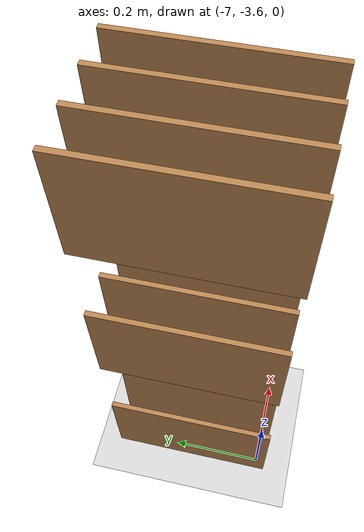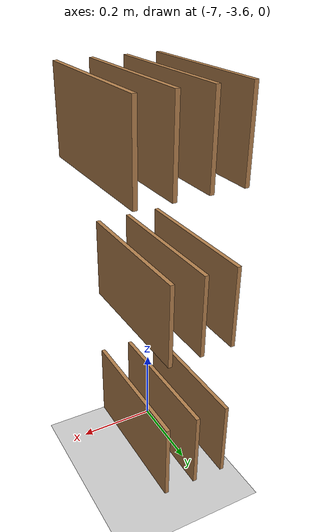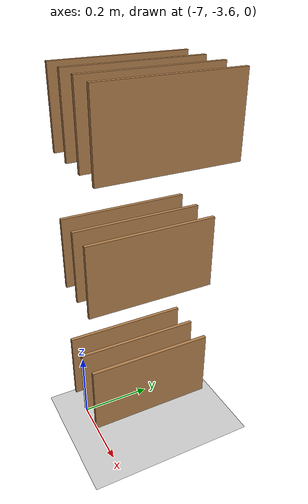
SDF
<sdf version="1.7">
 <world name="default">
  <model name="ground_plane">
   <static>1</static>
   <link name="link">
    <collision name="collision">
     <geometry><plane><normal>0 0 1</normal><size>100 100</size></plane></geometry>
     <surface><friction><ode><mu>1</mu><mu2>1</mu2></ode></friction></surface>
    </collision>
    <visual name="visual">
     <cast_shadows>0</cast_shadows>
     <geometry><plane><normal>0 0 1</normal><size>100 100</size></plane></geometry>
     <material>
      <script><uri>file://media/materials/scripts/gazebo.material</uri><name>Gazebo/Grey</name></script>
     </material>
    </visual>
    <velocity_decay><linear>0</linear><angular>0</angular></velocity_decay>
   </link>
  </model>
  <model name="bookshelf_0">
   <link name="link_1">
    <inertial>
     <mass>1</mass>
     <inertia>
      <ixx>0.166667</ixx>
      <ixy>0</ixy>
      <ixz>0</ixz>
      <iyy>0.166667</iyy>
      <iyz>0</iyz>
      <izz>0.166667</izz>
     </inertia>
    </inertial>
    <pose>-0.38 -0.195 0.907998 0 0 -1.57</pose>
    <visual name="visual">
     <geometry><box><size>0.35 0.01 0.2</size></box></geometry>
     <material>
      <script><uri>file://media/materials/scripts/gazebo.material</uri><name>Gazebo/Wood</name></script>
      <shader type="pixel"/>
     </material>
    </visual>
    <visual name="ModelPreview_3::link_1::visual_1">
     <geometry><box><size>0.35 0.01 0.2</size></box></geometry>
     <material>
      <lighting>1</lighting>
      <script><uri>file://media/materials/scripts/gazebo.material</uri><name>Gazebo/Grey</name></script>
      <shader type="pixel"><normal_map>__default__</normal_map></shader>
      <ambient>0.3 0.3 0.3 1</ambient>
      <diffuse>0.7 0.7 0.7 1</diffuse>
      <specular>0.01 0.01 0.01 1</specular>
      <emissive>0 0 0 1</emissive>
     </material>
    </visual>
    <collision name="collision">
     <geometry><box><size>0.35 0.01 0.2</size></box></geometry>
     <surface>
      <friction>
       <ode><mu>1</mu><mu2>1</mu2><fdir1>0 0 0</fdir1><slip1>0</slip1><slip2>0</slip2></ode>
       <torsional>
        <coefficient>1</coefficient>
        <patch_radius>0</patch_radius>
        <surface_radius>0</surface_radius>
        <use_patch_radius>1</use_patch_radius>
        <ode><slip>0</slip></ode>
       </torsional>
      </friction>
      <bounce><restitution_coefficient>0</restitution_coefficient><threshold>1e+06</threshold></bounce>
      <contact>
       <collide_without_contact>0</collide_without_contact>
       <collide_without_contact_bitmask>1</collide_without_contact_bitmask>
       <collide_bitmask>1</collide_bitmask>
       <ode>
        <soft_cfm>0</soft_cfm>
        <soft_erp>0.2</soft_erp>
        <kp>1e+13</kp>
        <kd>1</kd>
        <max_vel>0.01</max_vel>
        <min_depth>0</min_depth>
       </ode>
       <bullet>
        <split_impulse>1</split_impulse>
        <split_impulse_penetration_threshold>-0.01</split_impulse_penetration_threshold>
        <soft_cfm>0</soft_cfm>
        <soft_erp>0.2</soft_erp>
        <kp>1e+13</kp>
        <kd>1</kd>
       </bullet>
      </contact>
     </surface>
    </collision>
   </link>
   <link name="link_2">
    <inertial>
     <mass>1</mass>
     <inertia>
      <ixx>0.166667</ixx>
      <ixy>0</ixy>
      <ixz>0</ixz>
      <iyy>0.166667</iyy>
      <iyz>0</iyz>
      <izz>0.166667</izz>
     </inertia>
    </inertial>
    <pose>-0.3 -0.195 0.907998 0 0 -1.57</pose>
    <visual name="visual">
     <geometry><box><size>0.35 0.01 0.2</size></box></geometry>
     <material>
      <script><uri>file://media/materials/scripts/gazebo.material</uri><name>Gazebo/Wood</name></script>
      <shader type="pixel"/>
     </material>
    </visual>
    <visual name="ModelPreview_3::link_1::visual_1">
     <geometry><box><size>0.35 0.01 0.2</size></box></geometry>
     <material>
      <lighting>1</lighting>
      <script><uri>file://media/materials/scripts/gazebo.material</uri><name>Gazebo/Grey</name></script>
      <shader type="pixel"><normal_map>__default__</normal_map></shader>
      <ambient>0.3 0.3 0.3 1</ambient>
      <diffuse>0.7 0.7 0.7 1</diffuse>
      <specular>0.01 0.01 0.01 1</specular>
      <emissive>0 0 0 1</emissive>
     </material>
    </visual>
    <collision name="collision">
     <geometry><box><size>0.35 0.01 0.2</size></box></geometry>
     <surface>
      <friction>
       <ode><mu>1</mu><mu2>1</mu2><fdir1>0 0 0</fdir1><slip1>0</slip1><slip2>0</slip2></ode>
       <torsional>
        <coefficient>1</coefficient>
        <patch_radius>0</patch_radius>
        <surface_radius>0</surface_radius>
        <use_patch_radius>1</use_patch_radius>
        <ode><slip>0</slip></ode>
       </torsional>
      </friction>
      <bounce><restitution_coefficient>0</restitution_coefficient><threshold>1e+06</threshold></bounce>
      <contact>
       <collide_without_contact>0</collide_without_contact>
       <collide_without_contact_bitmask>1</collide_without_contact_bitmask>
       <collide_bitmask>1</collide_bitmask>
       <ode>
        <soft_cfm>0</soft_cfm>
        <soft_erp>0.2</soft_erp>
        <kp>1e+13</kp>
        <kd>1</kd>
        <max_vel>0.01</max_vel>
        <min_depth>0</min_depth>
       </ode>
       <bullet>
        <split_impulse>1</split_impulse>
        <split_impulse_penetration_threshold>-0.01</split_impulse_penetration_threshold>
        <soft_cfm>0</soft_cfm>
        <soft_erp>0.2</soft_erp>
        <kp>1e+13</kp>
        <kd>1</kd>
       </bullet>
      </contact>
     </surface>
    </collision>
   </link>
   <link name="link_3">
    <inertial>
     <mass>1</mass>
     <inertia>
      <ixx>0.166667</ixx>
      <ixy>0</ixy>
      <ixz>0</ixz>
      <iyy>0.166667</iyy>
      <iyz>0</iyz>
      <izz>0.166667</izz>
     </inertia>
    </inertial>
    <pose>-0.22 -0.195 0.907998 0 0 -1.57</pose>
    <visual name="visual">
     <geometry><box><size>0.35 0.01 0.2</size></box></geometry>
     <material>
      <script><uri>file://media/materials/scripts/gazebo.material</uri><name>Gazebo/Wood</name></script>
      <shader type="pixel"/>
     </material>
    </visual>
    <visual name="ModelPreview_3::link_1::visual_1">
     <geometry><box><size>0.35 0.01 0.2</size></box></geometry>
     <material>
      <lighting>1</lighting>
      <script><uri>file://media/materials/scripts/gazebo.material</uri><name>Gazebo/Grey</name></script>
      <shader type="pixel"><normal_map>__default__</normal_map></shader>
      <ambient>0.3 0.3 0.3 1</ambient>
      <diffuse>0.7 0.7 0.7 1</diffuse>
      <specular>0.01 0.01 0.01 1</specular>
      <emissive>0 0 0 1</emissive>
     </material>
    </visual>
    <collision name="collision">
     <geometry><box><size>0.35 0.01 0.2</size></box></geometry>
     <surface>
      <friction>
       <ode><mu>1</mu><mu2>1</mu2><fdir1>0 0 0</fdir1><slip1>0</slip1><slip2>0</slip2></ode>
       <torsional>
        <coefficient>1</coefficient>
        <patch_radius>0</patch_radius>
        <surface_radius>0</surface_radius>
        <use_patch_radius>1</use_patch_radius>
        <ode><slip>0</slip></ode>
       </torsional>
      </friction>
      <bounce><restitution_coefficient>0</restitution_coefficient><threshold>1e+06</threshold></bounce>
      <contact>
       <collide_without_contact>0</collide_without_contact>
       <collide_without_contact_bitmask>1</collide_without_contact_bitmask>
       <collide_bitmask>1</collide_bitmask>
       <ode>
        <soft_cfm>0</soft_cfm>
        <soft_erp>0.2</soft_erp>
        <kp>1e+13</kp>
        <kd>1</kd>
        <max_vel>0.01</max_vel>
        <min_depth>0</min_depth>
       </ode>
       <bullet>
        <split_impulse>1</split_impulse>
        <split_impulse_penetration_threshold>-0.01</split_impulse_penetration_threshold>
        <soft_cfm>0</soft_cfm>
        <soft_erp>0.2</soft_erp>
        <kp>1e+13</kp>
        <kd>1</kd>
       </bullet>
      </contact>
     </surface>
    </collision>
   </link>
   <link name="link_4">
    <inertial>
     <mass>1</mass>
     <inertia>
      <ixx>0.166667</ixx>
      <ixy>0</ixy>
      <ixz>0</ixz>
      <iyy>0.166667</iyy>
      <iyz>0</iyz>
      <izz>0.166667</izz>
     </inertia>
    </inertial>
    <pose>-0.14 -0.195 0.907998 0 0 -1.57</pose>
    <visual name="visual">
     <geometry><box><size>0.35 0.01 0.2</size></box></geometry>
     <material>
      <script><uri>file://media/materials/scripts/gazebo.material</uri><name>Gazebo/Wood</name></script>
      <shader type="pixel"/>
     </material>
    </visual>
    <visual name="ModelPreview_3::link_1::visual_1">
     <geometry><box><size>0.35 0.01 0.2</size></box></geometry>
     <material>
      <lighting>1</lighting>
      <script><uri>file://media/materials/scripts/gazebo.material</uri><name>Gazebo/Grey</name></script>
      <shader type="pixel"><normal_map>__default__</normal_map></shader>
      <ambient>0.3 0.3 0.3 1</ambient>
      <diffuse>0.7 0.7 0.7 1</diffuse>
      <specular>0.01 0.01 0.01 1</specular>
      <emissive>0 0 0 1</emissive>
     </material>
    </visual>
    <collision name="collision">
     <geometry><box><size>0.35 0.01 0.2</size></box></geometry>
     <surface>
      <friction>
       <ode><mu>1</mu><mu2>1</mu2><fdir1>0 0 0</fdir1><slip1>0</slip1><slip2>0</slip2></ode>
       <torsional>
        <coefficient>1</coefficient>
        <patch_radius>0</patch_radius>
        <surface_radius>0</surface_radius>
        <use_patch_radius>1</use_patch_radius>
        <ode><slip>0</slip></ode>
       </torsional>
      </friction>
      <bounce><restitution_coefficient>0</restitution_coefficient><threshold>1e+06</threshold></bounce>
      <contact>
       <collide_without_contact>0</collide_without_contact>
       <collide_without_contact_bitmask>1</collide_without_contact_bitmask>
       <collide_bitmask>1</collide_bitmask>
       <ode>
        <soft_cfm>0</soft_cfm>
        <soft_erp>0.2</soft_erp>
        <kp>1e+13</kp>
        <kd>1</kd>
        <max_vel>0.01</max_vel>
        <min_depth>0</min_depth>
       </ode>
       <bullet>
        <split_impulse>1</split_impulse>
        <split_impulse_penetration_threshold>-0.01</split_impulse_penetration_threshold>
        <soft_cfm>0</soft_cfm>
        <soft_erp>0.2</soft_erp>
        <kp>1e+13</kp>
        <kd>1</kd>
       </bullet>
      </contact>
     </surface>
    </collision>
   </link>
   <link name="link_2_1">
    <inertial>
     <mass>1</mass>
     <inertia>
      <ixx>0.166667</ixx>
      <ixy>0</ixy>
      <ixz>0</ixz>
      <iyy>0.166667</iyy>
      <iyz>0</iyz>
      <izz>0.166667</izz>
     </inertia>
    </inertial>
    <pose>-0.38 -0.195 0.5379 0 0 -1.57</pose>
    <visual name="visual">
     <geometry><box><size>0.35 0.01 0.2</size></box></geometry>
     <material>
      <script><uri>file://media/materials/scripts/gazebo.material</uri><name>Gazebo/Wood</name></script>
      <shader type="pixel"/>
     </material>
    </visual>
    <visual name="ModelPreview_3::link_1::visual_1">
     <geometry><box><size>0.35 0.01 0.2</size></box></geometry>
     <material>
      <lighting>1</lighting>
      <script><uri>file://media/materials/scripts/gazebo.material</uri><name>Gazebo/Grey</name></script>
      <shader type="pixel"><normal_map>__default__</normal_map></shader>
      <ambient>0.3 0.3 0.3 1</ambient>
      <diffuse>0.7 0.7 0.7 1</diffuse>
      <specular>0.01 0.01 0.01 1</specular>
      <emissive>0 0 0 1</emissive>
     </material>
    </visual>
    <collision name="collision">
     <geometry><box><size>0.35 0.01 0.2</size></box></geometry>
     <surface>
      <friction>
       <ode><mu>1</mu><mu2>1</mu2><fdir1>0 0 0</fdir1><slip1>0</slip1><slip2>0</slip2></ode>
       <torsional>
        <coefficient>1</coefficient>
        <patch_radius>0</patch_radius>
        <surface_radius>0</surface_radius>
        <use_patch_radius>1</use_patch_radius>
        <ode><slip>0</slip></ode>
       </torsional>
      </friction>
      <bounce><restitution_coefficient>0</restitution_coefficient><threshold>1e+06</threshold></bounce>
      <contact>
       <collide_without_contact>0</collide_without_contact>
       <collide_without_contact_bitmask>1</collide_without_contact_bitmask>
       <collide_bitmask>1</collide_bitmask>
       <ode>
        <soft_cfm>0</soft_cfm>
        <soft_erp>0.2</soft_erp>
        <kp>1e+13</kp>
        <kd>1</kd>
        <max_vel>0.01</max_vel>
        <min_depth>0</min_depth>
       </ode>
       <bullet>
        <split_impulse>1</split_impulse>
        <split_impulse_penetration_threshold>-0.01</split_impulse_penetration_threshold>
        <soft_cfm>0</soft_cfm>
        <soft_erp>0.2</soft_erp>
        <kp>1e+13</kp>
        <kd>1</kd>
       </bullet>
      </contact>
     </surface>
    </collision>
   </link>
   <link name="link_2_2">
    <inertial>
     <mass>1</mass>
     <inertia>
      <ixx>0.166667</ixx>
      <ixy>0</ixy>
      <ixz>0</ixz>
      <iyy>0.166667</iyy>
      <iyz>0</iyz>
      <izz>0.166667</izz>
     </inertia>
    </inertial>
    <pose>-0.3 -0.195 0.5379 0 0 -1.57</pose>
    <visual name="visual">
     <geometry><box><size>0.35 0.01 0.2</size></box></geometry>
     <material>
      <script><uri>file://media/materials/scripts/gazebo.material</uri><name>Gazebo/Wood</name></script>
      <shader type="pixel"/>
     </material>
    </visual>
    <visual name="ModelPreview_3::link_1::visual_1">
     <geometry><box><size>0.35 0.01 0.2</size></box></geometry>
     <material>
      <lighting>1</lighting>
      <script><uri>file://media/materials/scripts/gazebo.material</uri><name>Gazebo/Grey</name></script>
      <shader type="pixel"><normal_map>__default__</normal_map></shader>
      <ambient>0.3 0.3 0.3 1</ambient>
      <diffuse>0.7 0.7 0.7 1</diffuse>
      <specular>0.01 0.01 0.01 1</specular>
      <emissive>0 0 0 1</emissive>
     </material>
    </visual>
    <collision name="collision">
     <geometry><box><size>0.35 0.01 0.2</size></box></geometry>
     <surface>
      <friction>
       <ode><mu>1</mu><mu2>1</mu2><fdir1>0 0 0</fdir1><slip1>0</slip1><slip2>0</slip2></ode>
       <torsional>
        <coefficient>1</coefficient>
        <patch_radius>0</patch_radius>
        <surface_radius>0</surface_radius>
        <use_patch_radius>1</use_patch_radius>
        <ode><slip>0</slip></ode>
       </torsional>
      </friction>
      <bounce><restitution_coefficient>0</restitution_coefficient><threshold>1e+06</threshold></bounce>
      <contact>
       <collide_without_contact>0</collide_without_contact>
       <collide_without_contact_bitmask>1</collide_without_contact_bitmask>
       <collide_bitmask>1</collide_bitmask>
       <ode>
        <soft_cfm>0</soft_cfm>
        <soft_erp>0.2</soft_erp>
        <kp>1e+13</kp>
        <kd>1</kd>
        <max_vel>0.01</max_vel>
        <min_depth>0</min_depth>
       </ode>
       <bullet>
        <split_impulse>1</split_impulse>
        <split_impulse_penetration_threshold>-0.01</split_impulse_penetration_threshold>
        <soft_cfm>0</soft_cfm>
        <soft_erp>0.2</soft_erp>
        <kp>1e+13</kp>
        <kd>1</kd>
       </bullet>
      </contact>
     </surface>
    </collision>
   </link>
   <link name="link_2_3">
    <inertial>
     <mass>1</mass>
     <inertia>
      <ixx>0.166667</ixx>
      <ixy>0</ixy>
      <ixz>0</ixz>
      <iyy>0.166667</iyy>
      <iyz>0</iyz>
      <izz>0.166667</izz>
     </inertia>
    </inertial>
    <pose>-0.22 -0.195 0.5379 0 0 -1.57</pose>
    <visual name="visual">
     <geometry><box><size>0.35 0.01 0.2</size></box></geometry>
     <material>
      <script><uri>file://media/materials/scripts/gazebo.material</uri><name>Gazebo/Wood</name></script>
      <shader type="pixel"/>
     </material>
    </visual>
    <visual name="ModelPreview_3::link_1::visual_1">
     <geometry><box><size>0.35 0.01 0.2</size></box></geometry>
     <material>
      <lighting>1</lighting>
      <script><uri>file://media/materials/scripts/gazebo.material</uri><name>Gazebo/Grey</name></script>
      <shader type="pixel"><normal_map>__default__</normal_map></shader>
      <ambient>0.3 0.3 0.3 1</ambient>
      <diffuse>0.7 0.7 0.7 1</diffuse>
      <specular>0.01 0.01 0.01 1</specular>
      <emissive>0 0 0 1</emissive>
     </material>
    </visual>
    <collision name="collision">
     <geometry><box><size>0.35 0.01 0.2</size></box></geometry>
     <surface>
      <friction>
       <ode><mu>1</mu><mu2>1</mu2><fdir1>0 0 0</fdir1><slip1>0</slip1><slip2>0</slip2></ode>
       <torsional>
        <coefficient>1</coefficient>
        <patch_radius>0</patch_radius>
        <surface_radius>0</surface_radius>
        <use_patch_radius>1</use_patch_radius>
        <ode><slip>0</slip></ode>
       </torsional>
      </friction>
      <bounce><restitution_coefficient>0</restitution_coefficient><threshold>1e+06</threshold></bounce>
      <contact>
       <collide_without_contact>0</collide_without_contact>
       <collide_without_contact_bitmask>1</collide_without_contact_bitmask>
       <collide_bitmask>1</collide_bitmask>
       <ode>
        <soft_cfm>0</soft_cfm>
        <soft_erp>0.2</soft_erp>
        <kp>1e+13</kp>
        <kd>1</kd>
        <max_vel>0.01</max_vel>
        <min_depth>0</min_depth>
       </ode>
       <bullet>
        <split_impulse>1</split_impulse>
        <split_impulse_penetration_threshold>-0.01</split_impulse_penetration_threshold>
        <soft_cfm>0</soft_cfm>
        <soft_erp>0.2</soft_erp>
        <kp>1e+13</kp>
        <kd>1</kd>
       </bullet>
      </contact>
     </surface>
    </collision>
   </link>
   <link name="link_3_1">
    <inertial>
     <mass>1</mass>
     <inertia>
      <ixx>0.166667</ixx>
      <ixy>0</ixy>
      <ixz>0</ixz>
      <iyy>0.166667</iyy>
      <iyz>0</iyz>
      <izz>0.166667</izz>
     </inertia>
    </inertial>
    <pose>-0.38 -0.195 0.158 0 0 -1.57</pose>
    <visual name="visual">
     <geometry><box><size>0.35 0.01 0.2</size></box></geometry>
     <material>
      <script><uri>file://media/materials/scripts/gazebo.material</uri><name>Gazebo/Wood</name></script>
      <shader type="pixel"/>
     </material>
    </visual>
    <visual name="ModelPreview_3::link_1::visual_1">
     <geometry><box><size>0.35 0.01 0.2</size></box></geometry>
     <material>
      <lighting>1</lighting>
      <script><uri>file://media/materials/scripts/gazebo.material</uri><name>Gazebo/Grey</name></script>
      <shader type="pixel"><normal_map>__default__</normal_map></shader>
      <ambient>0.3 0.3 0.3 1</ambient>
      <diffuse>0.7 0.7 0.7 1</diffuse>
      <specular>0.01 0.01 0.01 1</specular>
      <emissive>0 0 0 1</emissive>
     </material>
    </visual>
    <collision name="collision">
     <geometry><box><size>0.35 0.01 0.2</size></box></geometry>
     <surface>
      <friction>
       <ode><mu>1</mu><mu2>1</mu2><fdir1>0 0 0</fdir1><slip1>0</slip1><slip2>0</slip2></ode>
       <torsional>
        <coefficient>1</coefficient>
        <patch_radius>0</patch_radius>
        <surface_radius>0</surface_radius>
        <use_patch_radius>1</use_patch_radius>
        <ode><slip>0</slip></ode>
       </torsional>
      </friction>
      <bounce><restitution_coefficient>0</restitution_coefficient><threshold>1e+06</threshold></bounce>
      <contact>
       <collide_without_contact>0</collide_without_contact>
       <collide_without_contact_bitmask>1</collide_without_contact_bitmask>
       <collide_bitmask>1</collide_bitmask>
       <ode>
        <soft_cfm>0</soft_cfm>
        <soft_erp>0.2</soft_erp>
        <kp>1e+13</kp>
        <kd>1</kd>
        <max_vel>0.01</max_vel>
        <min_depth>0</min_depth>
       </ode>
       <bullet>
        <split_impulse>1</split_impulse>
        <split_impulse_penetration_threshold>-0.01</split_impulse_penetration_threshold>
        <soft_cfm>0</soft_cfm>
        <soft_erp>0.2</soft_erp>
        <kp>1e+13</kp>
        <kd>1</kd>
       </bullet>
      </contact>
     </surface>
    </collision>
   </link>
   <link name="link_3_2">
    <inertial>
     <mass>1</mass>
     <inertia>
      <ixx>0.166667</ixx>
      <ixy>0</ixy>
      <ixz>0</ixz>
      <iyy>0.166667</iyy>
      <iyz>0</iyz>
      <izz>0.166667</izz>
     </inertia>
    </inertial>
    <pose>-0.3 -0.195 0.158 0 0 -1.57</pose>
    <visual name="visual">
     <geometry><box><size>0.35 0.01 0.2</size></box></geometry>
     <material>
      <script><uri>file://media/materials/scripts/gazebo.material</uri><name>Gazebo/Wood</name></script>
      <shader type="pixel"/>
     </material>
    </visual>
    <visual name="ModelPreview_3::link_1::visual_1">
     <geometry><box><size>0.35 0.01 0.2</size></box></geometry>
     <material>
      <lighting>1</lighting>
      <script><uri>file://media/materials/scripts/gazebo.material</uri><name>Gazebo/Grey</name></script>
      <shader type="pixel"><normal_map>__default__</normal_map></shader>
      <ambient>0.3 0.3 0.3 1</ambient>
      <diffuse>0.7 0.7 0.7 1</diffuse>
      <specular>0.01 0.01 0.01 1</specular>
      <emissive>0 0 0 1</emissive>
     </material>
    </visual>
    <collision name="collision">
     <geometry><box><size>0.35 0.01 0.2</size></box></geometry>
     <surface>
      <friction>
       <ode><mu>1</mu><mu2>1</mu2><fdir1>0 0 0</fdir1><slip1>0</slip1><slip2>0</slip2></ode>
       <torsional>
        <coefficient>1</coefficient>
        <patch_radius>0</patch_radius>
        <surface_radius>0</surface_radius>
        <use_patch_radius>1</use_patch_radius>
        <ode><slip>0</slip></ode>
       </torsional>
      </friction>
      <bounce><restitution_coefficient>0</restitution_coefficient><threshold>1e+06</threshold></bounce>
      <contact>
       <collide_without_contact>0</collide_without_contact>
       <collide_without_contact_bitmask>1</collide_without_contact_bitmask>
       <collide_bitmask>1</collide_bitmask>
       <ode>
        <soft_cfm>0</soft_cfm>
        <soft_erp>0.2</soft_erp>
        <kp>1e+13</kp>
        <kd>1</kd>
        <max_vel>0.01</max_vel>
        <min_depth>0</min_depth>
       </ode>
       <bullet>
        <split_impulse>1</split_impulse>
        <split_impulse_penetration_threshold>-0.01</split_impulse_penetration_threshold>
        <soft_cfm>0</soft_cfm>
        <soft_erp>0.2</soft_erp>
        <kp>1e+13</kp>
        <kd>1</kd>
       </bullet>
      </contact>
     </surface>
    </collision>
   </link>
   <link name="link_3_3">
    <inertial>
     <mass>1</mass>
     <inertia>
      <ixx>0.166667</ixx>
      <ixy>0</ixy>
      <ixz>0</ixz>
      <iyy>0.166667</iyy>
      <iyz>0</iyz>
      <izz>0.166667</izz>
     </inertia>
    </inertial>
    <pose>-0.22 -0.195 0.158 0 0 -1.57</pose>
    <visual name="visual">
     <geometry><box><size>0.35 0.01 0.2</size></box></geometry>
     <material>
      <script><uri>file://media/materials/scripts/gazebo.material</uri><name>Gazebo/Wood</name></script>
      <shader type="pixel"/>
     </material>
    </visual>
    <visual name="ModelPreview_3::link_1::visual_1">
     <geometry><box><size>0.35 0.01 0.2</size></box></geometry>
     <material>
      <lighting>1</lighting>
      <script><uri>file://media/materials/scripts/gazebo.material</uri><name>Gazebo/Grey</name></script>
      <shader type="pixel"><normal_map>__default__</normal_map></shader>
      <ambient>0.3 0.3 0.3 1</ambient>
      <diffuse>0.7 0.7 0.7 1</diffuse>
      <specular>0.01 0.01 0.01 1</specular>
      <emissive>0 0 0 1</emissive>
     </material>
    </visual>
    <collision name="collision">
     <geometry><box><size>0.35 0.01 0.2</size></box></geometry>
     <surface>
      <friction>
       <ode><mu>1</mu><mu2>1</mu2><fdir1>0 0 0</fdir1><slip1>0</slip1><slip2>0</slip2></ode>
       <torsional>
        <coefficient>1</coefficient>
        <patch_radius>0</patch_radius>
        <surface_radius>0</surface_radius>
        <use_patch_radius>1</use_patch_radius>
        <ode><slip>0</slip></ode>
       </torsional>
      </friction>
      <bounce><restitution_coefficient>0</restitution_coefficient><threshold>1e+06</threshold></bounce>
      <contact>
       <collide_without_contact>0</collide_without_contact>
       <collide_without_contact_bitmask>1</collide_without_contact_bitmask>
       <collide_bitmask>1</collide_bitmask>
       <ode>
        <soft_cfm>0</soft_cfm>
        <soft_erp>0.2</soft_erp>
        <kp>1e+13</kp>
        <kd>1</kd>
        <max_vel>0.01</max_vel>
        <min_depth>0</min_depth>
       </ode>
       <bullet>
        <split_impulse>1</split_impulse>
        <split_impulse_penetration_threshold>-0.01</split_impulse_penetration_threshold>
        <soft_cfm>0</soft_cfm>
        <soft_erp>0.2</soft_erp>
        <kp>1e+13</kp>
        <kd>1</kd>
       </bullet>
      </contact>
     </surface>
    </collision>
   </link>
   <static>1</static>
   <pose>-6.65359 -3.24846 0 0 -0 0</pose>
  </model>
 </world>
</sdf>
